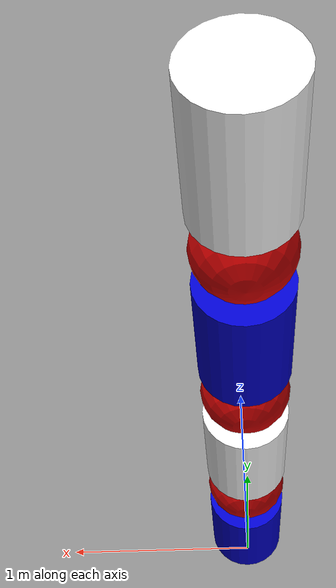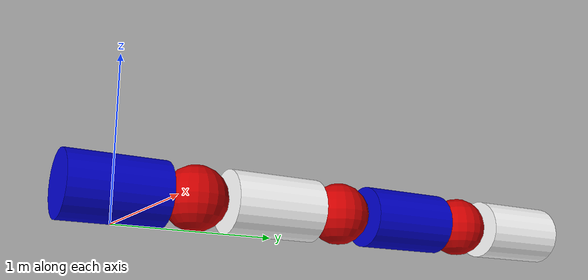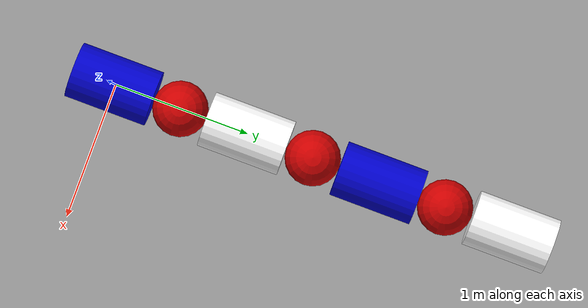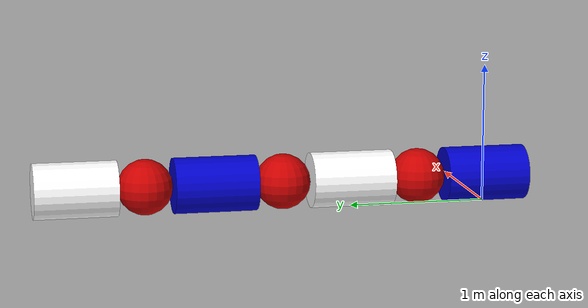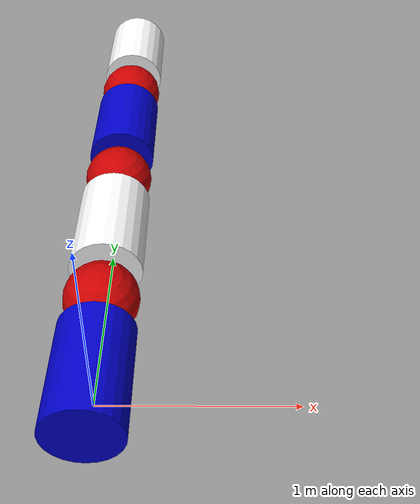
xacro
<?xml version="1.0"?>
<robot name="snake robot" xmlns:xacro="http://ros.org/wiki/xacro">

<xacro:property name="piperdius" value="0.2" />
<xacro:property name="pipelen" value="0.6" />

<material name="blue">
    <color rgba="0 0 0.8 1"/>
</material>

<material name="white">
    <color rgba="1 1 1 1"/>
</material>

<material name="red">
    <color rgba="0.8 0 0 1"/>
</material>

<link name="base_link">
    <visual>
        <geometry>
            <cylinder length="${pipelen}" radius="${piperdius}"/>
        </geometry>
        <origin rpy="0 1.57075 1.57075" xyz="0 0 0.2"/>
        <material name="blue"/>
    </visual>
    <collision>
        <geometry>
            <cylinder length="${pipelen}" radius="${piperdius}"/>
        </geometry>
      </collision>
</link>

<joint name="base_to_connector" type="revolute">
    <axis xyz="0 0 1"/>
    <limit effort="1000.0" lower="-1.5707" upper="1.5707" velocity="0.5"/>
    <parent link="base_link"/>
    <child link="connector1"/>
    <origin xyz="0 0.5 0.2"/>
</joint>

<link name="connector1">
    <visual>
      <geometry>
        <sphere radius="${piperdius}"/>
      </geometry>
      <material name="red"/>
    </visual>
    <collision>
        <geometry>
            <sphere radius="${piperdius}"/>
        </geometry>
      </collision>
  </link>

  <joint name="connector1_to_link1" type="fixed">
    <parent link="connector1"/>
    <child link="link1"/>
    <origin xyz="0 0.2 0.0"/>
</joint>

<link name="link1">
    <visual>
        <geometry>
            <cylinder length="${pipelen}" radius="${piperdius}"/>
        </geometry>
        <origin rpy="0 1.57075 1.57075" xyz="0 0.3 0"/>
        <material name="white"/>
    </visual>
    <collision>
        <geometry>
            <cylinder length="${pipelen}" radius="${piperdius}"/>
        </geometry>
      </collision>
</link>

<joint name="link1_to_connector2" type="revolute">
    <axis xyz="0 0 1"/>
    <limit effort="1000.0" lower="-1.5707" upper="1.5707" velocity="0.5"/>
    <parent link="link1"/>
    <child link="connector2"/>
    <origin xyz="0 0.8 0.0"/>
</joint>

<link name="connector2">
    <visual>
      <geometry>
        <sphere radius="${piperdius}"/>
      </geometry>
      <material name="red"/>
    </visual>
    <collision>
        <geometry>
            <sphere radius="${piperdius}"/>
        </geometry>
      </collision>
  </link>

<joint name="connector2_to_link2" type="fixed">
    <parent link="connector2"/>
    <child link="link2"/>
    <origin xyz="0 0.2 0.0"/>
</joint>

<link name="link2">
    <visual>
        <geometry>
            <cylinder length="${pipelen}" radius="${piperdius}"/>
        </geometry>
        <origin rpy="0 1.57075 1.57075" xyz="0 0.3 0"/>
        <material name="blue"/>
    </visual>
    <collision>
        <geometry>
            <cylinder length="${pipelen}" radius="${piperdius}"/>
        </geometry>
      </collision>
</link>

<joint name="link2_to_connector3" type="revolute">
    <axis xyz="0 0 1"/>
    <limit effort="1000.0" lower="-1.5707" upper="1.5707" velocity="0.5"/>
    <parent link="link2"/>
    <child link="connector3"/>
    <origin xyz="0 0.8 0.0"/>
</joint>

<link name="connector3">
    <visual>
      <geometry>
        <sphere radius="${piperdius}"/>
      </geometry>
      <material name="red"/>
    </visual>
    <collision>
        <geometry>
            <sphere radius="${piperdius}"/>
        </geometry>
      </collision>
  </link>

<joint name="connector3_to_link3" type="fixed">
    <parent link="connector3"/>
    <child link="link3"/>
    <origin xyz="0 0.2 0.0"/>
</joint>

<link name="link3">
    <visual>
        <geometry>
            <cylinder length="${pipelen}" radius="${piperdius}"/>
        </geometry>
        <origin rpy="0 1.57075 1.57075" xyz="0 0.3 0"/>
        <material name="white"/>
    </visual>
    <collision>
        <geometry>
          <cylinder length="${pipelen}" radius="${piperdius}"/>
        </geometry>
      </collision>
</link>

</robot>
